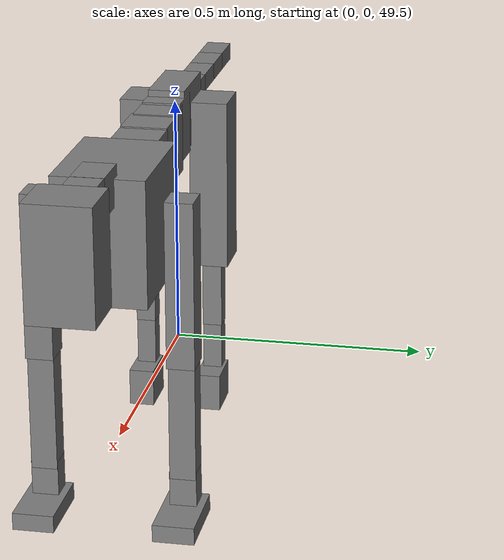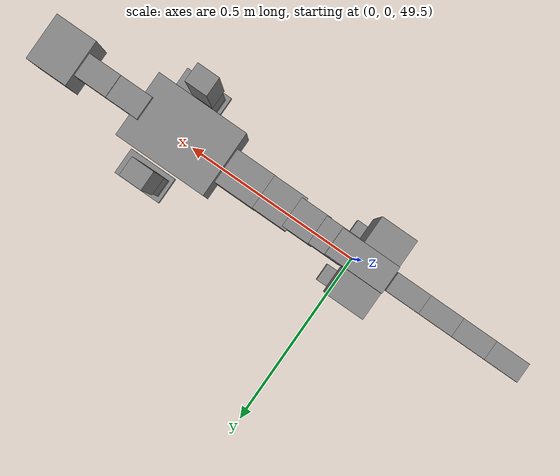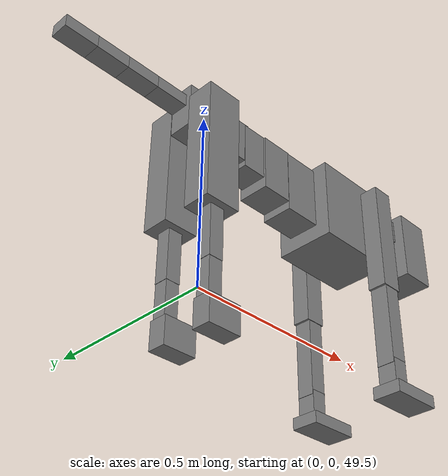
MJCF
<mujoco model="dog">

    <default>
        <joint armature="0.02" stiffness="1" damping="0.2" limited="true"/>
        <geom condim="3" friction="1 0.05 0.05" margin="0.01"/>
        <motor ctrllimited="true" ctrlrange="-1.0 1.0" forcelimited="true" gear="50"/>
    </default>

    <compiler inertiafromgeom="true" angle="radian"/>

    <option timestep="0.016" iterations="50" tolerance="1e-10" solver="Newton" jacobian="dense" cone="pyramidal"/>

    <size nconmax="20000" njmax="60000" nstack="5000000"/>
    <visual>
        <map force="0.1" zfar="30"/>
        <rgba haze="0.15 0.25 0.35 1"/>
        <quality shadowsize="2048"/>
        <global offwidth="800" offheight="800"/>
    </visual>

    <asset>
        <texture type="skybox" builtin="gradient" rgb1="0.3 0.5 0.7" rgb2="0 0 0" width="512" height="512"/>
        <texture name="texplane" type="2d" builtin="checker" rgb1=".2 .3 .4" rgb2=".1 0.15 0.2" width="512" height="512"
                 mark="cross" markrgb=".8 .8 .8"/>
        <texture name="texgeom" type="cube" builtin="flat" mark="cross" width="127" height="1278" rgb1="0.8 0.6 0.4"
                 rgb2="0.8 0.6 0.4" markrgb="1 1 1" random="0.01"/>

        <material name="matplane" reflectance="0.3" texture="texplane" texrepeat="1 1" texuniform="true"/>
        <material name="matgeom" texture="texgeom" texuniform="true" rgba="0.8 0.6 .4 1"/>
    </asset>

    <worldbody>
        <geom name="floor" pos="0 0 0" size="0 0 .25" type="plane" material="matplane" condim="3"/>

        <light directional="false" diffuse=".2 .2 .2" specular="0 0 0" pos="0 0 5" dir="0 0 -1" castshadow="false"/>
        <light mode="targetbodycom" target="torso" directional="false" diffuse=".8 .8 .8" specular="0.3 0.3 0.3"
               pos="0 0 4.0" dir="0 0 -1"/>

        <body name="root" pos="0 0 50">
            <freejoint name="root_1"/>
            <geom type="box" pos="0 0 -0.02" size="0.0774  0.0358  0.063" density="2030"/>

            <body name="spine1" pos="0.054 0 0">
                <joint name="spine1_y" axis="0 1 0" range="0 0.7" limited="true"/>
                <geom type="box" pos="0.02375 0 -0.03" size="0.04375  0.0375  0.05985" density="2030"/>

                <body name="spine2" pos="0.0612 0 0">
                    <joint name="spine2_y" axis="0 1 0" range="-0.15 0.15" limited="true"/>
                    <geom type="box" pos="0.03555  0  -0.04" size="0.04055  0.039  0.06615" density="2030"/>

                    <body name="spine3" pos="0.0730 0 0">
                        <joint name="spine3_y" axis="0 1 0" range="-0.15 0.15" limited="true"/>
                        <geom type="box" pos="0.03555  0  -0.057" size="0.04555  0.0445  0.081" density="2030"/>

                        <body name="spine4" pos="0.0780 0 0">
                            <joint name="spine4_y" axis="0 1 0" range="-0.15 0.15" limited="true"/>
                            <geom type="box" pos="0.05265  0  -0.07" size="0.05265  0.045  0.09135" density="2030"/>

                            <body name="torso" pos="0.1082 0 0">
                                <joint name="torso_y" axis="0 1 0" range="-0.15 0.15" limited="true"/>
                                <geom type="box" pos="0.11925  0  -0.085" size="0.11925  0.085  0.11745"
                                      density="2030"/>

                                <body name="neck1" pos="0.2160  0   0.0180">
                                    <joint name="neck1_y" axis="0 1 0" range="-1.2  -1" limited="true"/>
                                    <geom type="box" pos="0.0423  0  0" size="0.0423  0.03  0.036" density="2325"/>

                                    <body name="neck2" pos="0.0853  0  0">
                                        <joint name="neck2_y" axis="0 1 0" range="0.1  0" limited="true"/>
                                        <geom type="box" pos="0.0423  0  0" size="0.0423  0.03  0.036" density="2325"/>

                                        <body name="head" pos="0.0853  0  0">
                                            <joint name="head_y" axis="0 1 0" range="-0.3  -0.2" limited="true"/>
                                            <geom type="box" pos="0.0531  0  -0.055" size="0.0531  0.06  0.1044"
                                                  density="4030"/>

                                        </body>
                                    </body>
                                </body>

                                <body name="front_shoulder" pos="0.156  0   -0.0480">
                                    <joint name="front_shoulder_y" axis="0 1 0" range="-1 1.5" limited="true"/>
                                    <geom type="box" pos="0 0.13 -0.1293" size="0.0302  0.0258  0.1559" density="1158"/>
                                    <geom type="box" pos="0 -0.13 -0.1293" size="0.0302  0.0258  0.1559"
                                          density="1158"/>

                                    <body name="front_elbow" pos="0  0  -0.2586">
                                        <joint name="front_elbow_y" axis="0 1 0" range="-2 0" limited="true"/>
                                        <geom type="box" pos="0 0.13 -0.1229" size="0.0238  0.0243  0.1229"
                                              density="1081"/>
                                        <geom type="box" pos="0 -0.13 -0.1229" size="0.0238  0.0243  0.1229"
                                              density="1081"/>

                                        <body name="front_wrist" pos="0  0  -0.2458">
                                            <joint name="front_wrist_y" axis="0 1 0" range="-0.2 0" limited="true"/>
                                            <geom type="box" pos="0 0.13 -0.0340" size="0.0225  0.0250  0.0471"
                                                  density="1664"/>
                                            <geom type="box" pos="0 -0.13 -0.0340" size="0.0225  0.0250  0.0471"
                                                  density="1664"/>

                                            <body name="front_finger_end" pos="0  0  -0.0679">
                                                <joint name="front_finger_y" axis="0 1 0" range="-0.4 1"
                                                       limited="true"/>
                                                <geom type="box" pos="0.0385  0.13  -0.0014"
                                                      size="0.0707  0.0385  0.0164" density="1515"/>
                                                <geom type="box" pos="0.0385  -0.13  -0.0014"
                                                      size="0.0707  0.0385  0.0164" density="1515"/>

                                            </body>

                                        </body>
                                    </body>
                                </body>

                            </body>
                        </body>
                    </body>
                </body>
            </body>

            <body name="back_hip" pos="-0.03 0 -0.018">
                <joint name="back_hip_y" axis="0 1 0" range="-1.5 0.3" limited="true"/>
                <geom type="box" pos="0 0.07 -0.1479" size="0.0485  0.0380  0.1707" density="1154"/>
                <geom type="box" pos="0 -0.07 -0.1479" size="0.0485  0.0380  0.1707" density="1154"/>

                <body name="back_knee" pos="0  0  -0.2957">
                    <joint name="back_knee_y" axis="0 1 0" range="0 2.8" limited="true"/>
                    <geom type="box" pos="0 0.07 -0.0732" size="0.0198  0.0195  0.0887" density="1227"/>
                    <geom type="box" pos="0 -0.07 -0.0732" size="0.0198  0.0195  0.0887" density="1227"/>

                    <body name="back_ankle" pos="0  0  -0.1464">
                        <joint name="back_ankle_y" axis="0 1 0" range="-2.2 0" limited="true"/>
                        <geom type="box" pos="0 0.07 -0.0620" size="0.0188  0.0188  0.0732" density="1284"/>
                        <geom type="box" pos="0 -0.07 -0.0620" size="0.0188  0.0188  0.0732" density="1284"/>

                        <body name="back_toe_end" pos="0  0  -0.1240">
                            <joint name="back_toe_y" axis="0 1 0" range="-0.4 1" limited="true"/>
                            <geom type="box" pos="0.0250  0.07  -0.0224" size="0.0458  0.0250  0.0374" density="1515"/>
                            <geom type="box" pos="0.0250  -0.07  -0.0224" size="0.0458  0.0250  0.0374" density="1515"/>

                        </body>
                    </body>
                </body>
            </body>

            <body name="tail1" pos="-0.074 0 -0.006">
                <joint name="tail1_y" axis="0 1 0" range="-0.2 0.2" limited="true"/>
                <geom type="box" pos="-0.0536  0  0" size="0.045  0.025  0.0175" density="1587"/>

                <body name="tail2" pos="-0.09 0 0">
                    <joint name="tail2_y" axis="0 1 0" range="-0.2 0.2" limited="true"/>
                    <geom type="box" pos="-0.0536  0  0" size="0.045  0.025  0.0175" density="1587"/>

                    <body name="tail3" pos="-0.09 0 0">
                        <joint name="tail3_y" axis="0 1 0" range="-0.2 0.2" limited="true"/>
                        <geom type="box" pos="-0.0536  0  0" size="0.045  0.025  0.0175" density="1587"/>

                        <body name="tail4" pos="-0.09 0 0">
                            <joint name="tail4_y" axis="0 1 0" range="-0.2 0.2" limited="true"/>
                            <geom type="box" pos="-0.0536  0  0" size="0.045  0.025  0.0175" density="1587"/>

                        </body>
                    </body>
                </body>
            </body>
        </body>
    </worldbody>

    <actuator>
        <motor joint="spine1_y" forcerange="-150 150     "/>
        <motor joint="spine2_y" forcerange="-150 150     "/>
        <motor joint="spine3_y" forcerange="-150 150     "/>
        <motor joint="spine4_y" forcerange="-150 150     "/>
        <motor joint="torso_y" forcerange="-150 150     "/>
        <motor joint="neck1_y" forcerange="-100 100       "/>
        <motor joint="neck2_y" forcerange="-100 100       "/>
        <motor joint="head_y" forcerange="-150 150       "/>
        <motor joint="front_shoulder_y" forcerange="-145.95 126.01"/>
        <motor joint="front_elbow_y" forcerange="-152.01 124.71"/>
        <motor joint="front_wrist_y" forcerange="-144.63 55.73"/>
        <motor joint="front_finger_y" forcerange="-95.61 69.97"/>
        <motor joint="back_hip_y" forcerange="-365.96 340.91"/>
        <motor joint="back_knee_y" forcerange="-283.22 200.82"/>
        <motor joint="back_angle_y" forcerange="-92.63 107.70"/>
        <motor joint="back_toe_y" forcerange="-89.65 30.36"/>
        <motor joint="tail1_y" forcerange="-50 50     "/>
        <motor joint="tail2_y" forcerange="-50 50     "/>
        <motor joint="tail3_y" forcerange="-50 50     "/>
        <motor joint="tail4_y" forcerange="-50 50     "/>
    </actuator>
</mujoco>
